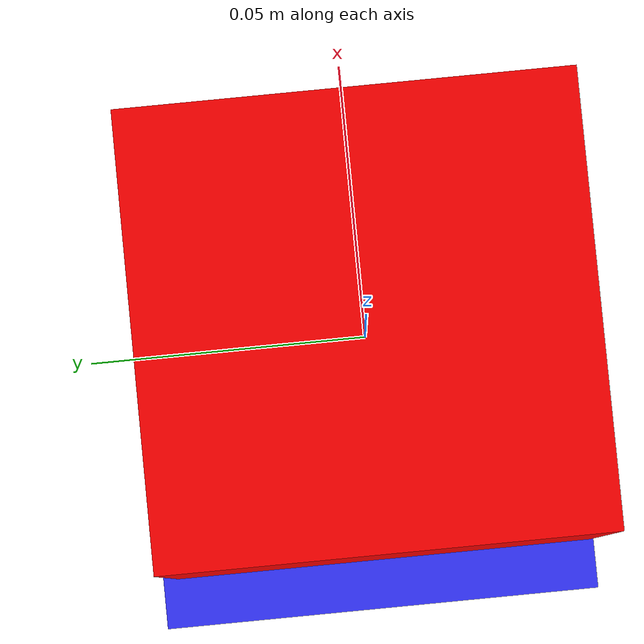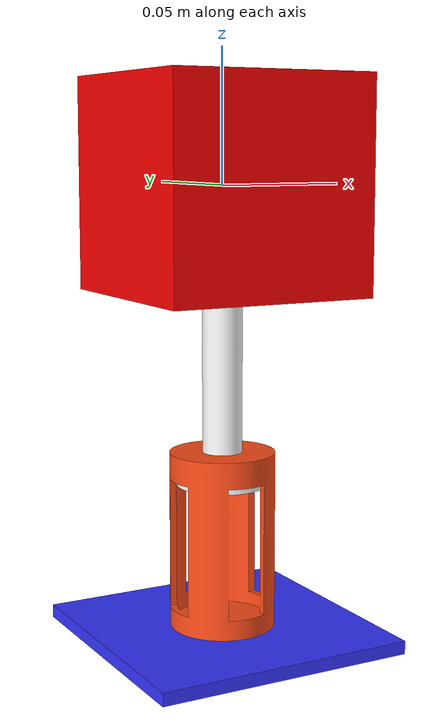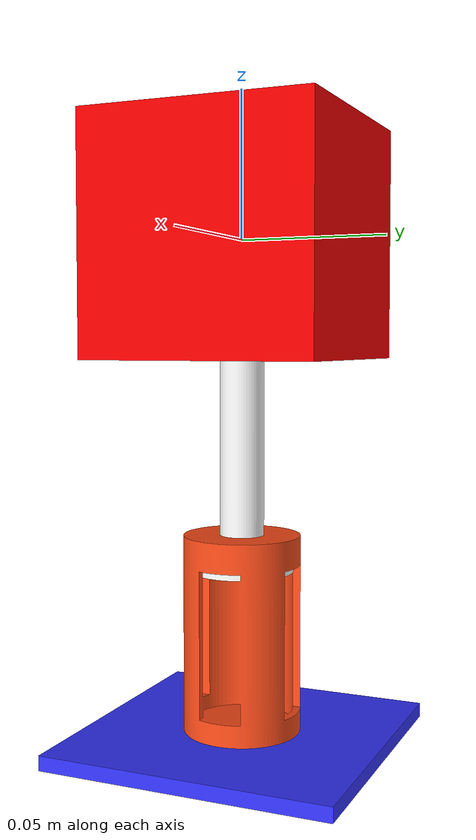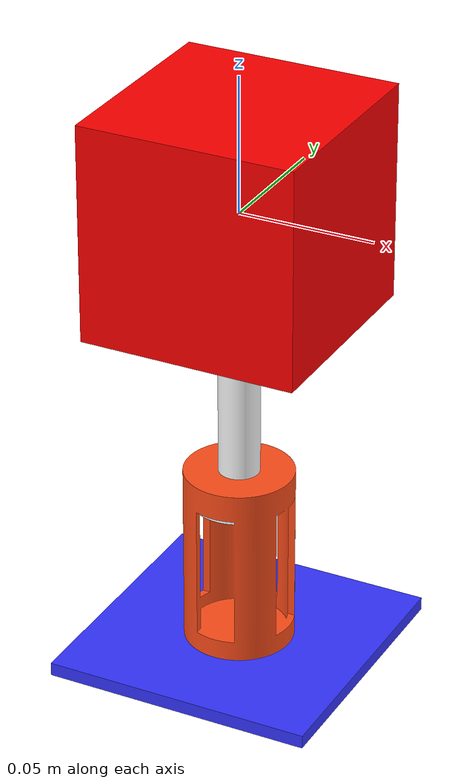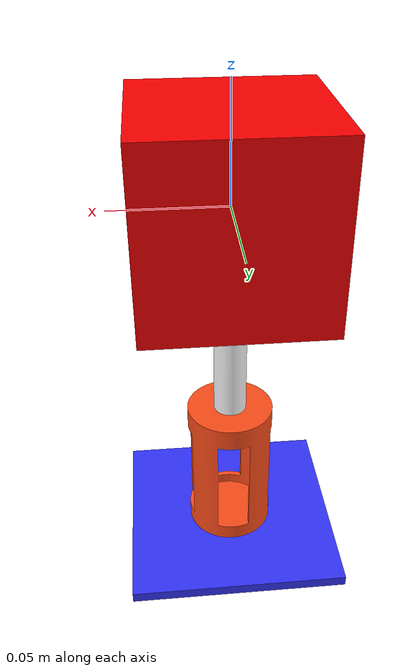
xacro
<?xml version="1.0"?>
<robot xmlns:xacro="http://www.ros.org/wiki/xacro" name="example">

    <xacro:include filename="robot_material.xacro"/>

    <!-- WORLD -->

    <link name="world"/>

    <!-- BODY -->

    <joint name="world_to_base" type="prismatic">
        <origin xyz="0 0 0" rpy="0 0 0"/>
        <parent link="world"/>
        <child link="body_link"/>
        <axis xyz="0 0 1"/>
        <limit lower="-0.3" upper="0.3" effort="0" velocity="10"/>
    </joint>

    <link name="body_link">
        <visual>
            <origin xyz="0 0 0"/>
            <geometry>
                <mesh filename="../meshes/body.stl"/>
            </geometry>
            <material name="red"/>
        </visual>
        <collision>
            <origin xyz="0 0 0"/>
            <geometry>
                <mesh filename="../meshes/body.stl"/>
            </geometry>
        </collision>
    </link>

    <!-- UPPER LEG -->

    <joint name="body_to_upper_leg" type="fixed">
        <origin xyz="0 0 -0.075" rpy="0 0 0"/>
        <parent link="body_link"/>
        <child link="upper_leg_link"/>
    </joint>

    <link name="upper_leg_link">
        <visual>
            <origin xyz="0 0 0" rpy="${pi/2} 0 0"/>
            <geometry>
                <mesh filename="../meshes/upper_leg.stl"/>
            </geometry>
            <material name="white"/>
        </visual>
        <collision>
            <origin xyz="0 0 0"/>
            <geometry>
                <mesh filename="../meshes/upper_leg.stl"/>
            </geometry>
        </collision>
    </link>

    <!-- LOWER LEG -->

    <joint name="upper_leg_to_lower_leg" type="prismatic">
        <origin xyz="0 0 -0.06" rpy="0 0 0"/>
        <parent link="upper_leg_link"/>
        <child link="lower_leg_link"/>
        <axis xyz="0 0 1"/>
        <limit lower="0" upper="0.05" effort="100" velocity="100"/>
    </joint>

    <link name="lower_leg_link">
        <visual>
            <origin xyz="0 0 0" rpy="${pi/2} 0 0"/>
            <geometry>
                <mesh filename="../meshes/lower_leg.stl"/>
            </geometry>
            <material name="orange"/>
        </visual>
        <collision>
            <origin xyz="0 0 0"/>
            <geometry>
                <mesh filename="../meshes/upper_leg.stl"/>
            </geometry>
        </collision>
    </link>

    <!-- FOOT -->

    <joint name="lower_leg_to_foot" type="fixed">
        <origin xyz="0 0 -0.035" rpy="0 0 0"/>
        <parent link="lower_leg_link"/>
        <child link="foot_link"/>
    </joint>

    <link name="foot_link">
        <visual>
            <origin xyz="0 0 0" rpy="${pi/2} 0 0"/>
            <geometry>
                <mesh filename="../meshes/foot.stl"/>
            </geometry>
            <material name="blue"/>
        </visual>
        <collision>
            <origin xyz="0 0 0"/>
            <geometry>
                <mesh filename="../meshes/foot.stl"/>
            </geometry>
        </collision>
    </link>

</robot>

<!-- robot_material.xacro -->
<robot xmlns:xacro="http://www.ros.org/wiki/xacro" >

    <material name="white">
        <color rgba="1 1 1 1" />
    </material>

    <material name="orange">
        <color rgba="1 0.3 0.1 1"/>
    </material>

    <material name="blue">
        <color rgba="0.2 0.2 1 1"/>
    </material>

    <material name="red">
        <color rgba="1 0 0 1"/>
    </material>

</robot>
